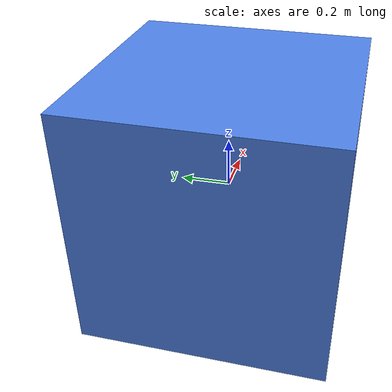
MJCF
<mujoco model="free_body_sensors">
  <size nuser_sensor="4"/>
  <option timestep="0.01" gravity="0 0 0"/>

  <worldbody>
    <body name="spacecraft" pos="0 0 0">
      <freejoint/>
      <geom type="box" size="0.5 0.5 0.5" mass="100" rgba="0.3 0.5 0.9 1"/>

      <site name="imu" pos="0 0 0" quat="1 0 0 0"/>
      <site name="sun_head" pos="0 0 0.2" quat="1 0 0 0"/>
      <site name="tracker" pos="0.2 0 0" quat="1 0 0 0"/>
      <site name="mag_rotated" pos="0 0.2 0" quat="0.7071067811865476 0 0 0.7071067811865476"/>
    </body>
  </worldbody>

  <sensor>
    <gyro name="gyro_body" site="imu" noise="5e-4" user="2e-5 0 0 0"/>
    <accelerometer name="acc_body" site="imu" noise="2e-3"/>
    <magnetometer name="mag_body" site="imu" noise="1e-7"/>
    <magnetometer name="mag_rotated" site="mag_rotated" noise="1e-7"/>

    <user
      name="orbit_sun_body"
      objtype="site"
      objname="sun_head"
      datatype="axis"
      needstage="pos"
      dim="3"
      noise="8.726646259971648e-4"
    />
    <user
      name="orbit_horizon_body"
      objtype="site"
      objname="sun_head"
      datatype="axis"
      needstage="pos"
      dim="3"
      noise="1.7453292519943296e-3"
    />
    <user
      name="orbit_star_body"
      objtype="site"
      objname="tracker"
      datatype="axis"
      needstage="pos"
      dim="3"
      noise="2.42406840554768e-5"
      user="0.3 0.8 -0.4 0"
    />
  </sensor>
</mujoco>
